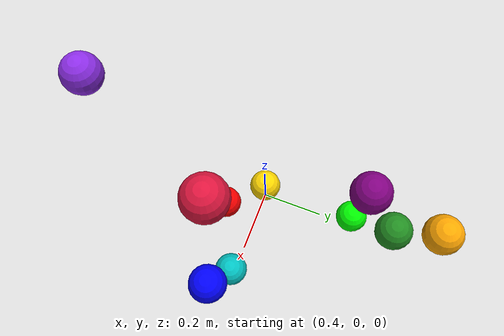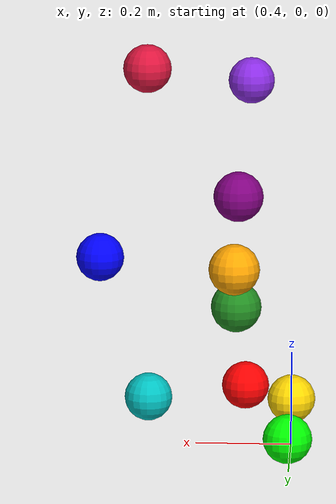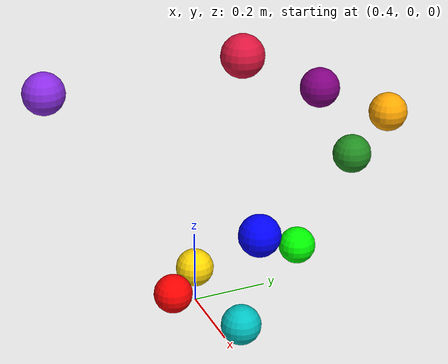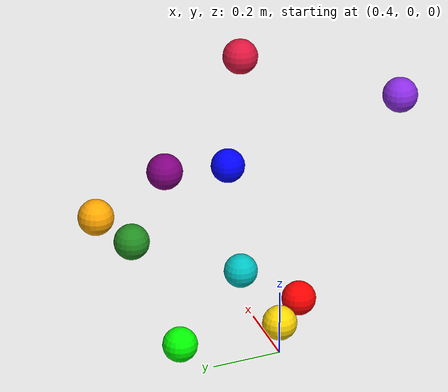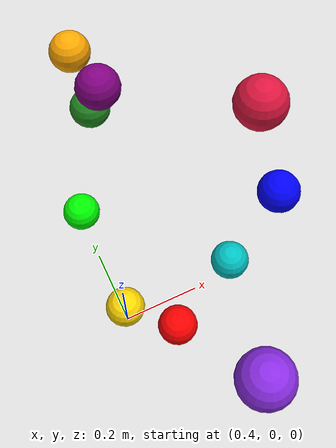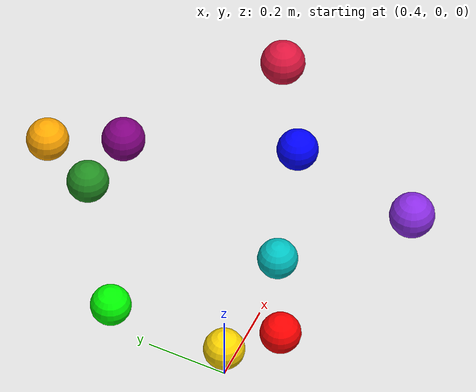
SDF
<sdf version="1.10">
 <world name="robot-arm">
  <physics name="default_physics" type="dart">
   <max_step_size>0.001</max_step_size>
   <real_time_factor>1</real_time_factor>
   <real_time_update_rate>1000</real_time_update_rate>
  </physics>
  <plugin filename="gz-sim-physics-system" name="gz::sim::systems::Physics"/>
  <plugin filename="gz-sim-sensors-system" name="gz::sim::systems::Sensors"/>
  <plugin filename="gz-sim-scene-broadcaster-system" name="gz::sim::systems::SceneBroadcaster"/>
  <plugin filename="gz-sim-user-commands-system" name="gz::sim::systems::UserCommands"/>
  <light type="directional" name="sun">
   <pose>0 0 10 0 0 0</pose>
   <diffuse>0.8 0.8 0.8 1</diffuse>
   <specular>0.2 0.2 0.2 1</specular>
   <attenuation>
    <range>1000</range>
    <constant>0.9</constant>
    <linear>0.01</linear>
    <quadratic>0.001</quadratic>
   </attenuation>
   <direction>-0.5 0.3 -0.9</direction>
  </light>
  <model name="hammer">
   <static>true</static>
   <pose>0.5 -0.1 0.1 0 0 0</pose>
   <link name="link">
    <inertial><mass>1.0</mass></inertial>
    <visual name="visual">
     <geometry><sphere><radius>0.05</radius></sphere></geometry>
     <material><ambient>1.0 0.0 0.0 1.0</ambient></material>
    </visual>
   </link>
  </model>
  <model name="push wall">
   <static>true</static>
   <pose>0.4 0.3 0.1 0 0 0</pose>
   <link name="link">
    <inertial><mass>1.0</mass></inertial>
    <visual name="visual">
     <geometry><sphere><radius>0.05</radius></sphere></geometry>
     <material><ambient>0.0 1.0 0.0 1.0</ambient></material>
    </visual>
   </link>
  </model>
  <model name="faucet close">
   <static>true</static>
   <pose>0.8 0.0 0.4 0 0 0</pose>
   <link name="link">
    <inertial><mass>1.0</mass></inertial>
    <visual name="visual">
     <geometry><sphere><radius>0.05</radius></sphere></geometry>
     <material><ambient>0.0 0.0 1.0 1.0</ambient></material>
    </visual>
   </link>
  </model>
  <model name="push back">
   <static>true</static>
   <pose>0.4 0.0 0.1 0 0 0</pose>
   <link name="link">
    <inertial><mass>1.0</mass></inertial>
    <visual name="visual">
     <geometry><sphere><radius>0.05</radius></sphere></geometry>
     <material><ambient>1.0 0.84 0.0 1.0</ambient></material>
    </visual>
   </link>
  </model>
  <model name="stick pull">
   <static>true</static>
   <pose>0.5 0.3 0.6 0 0 0</pose>
   <link name="link">
    <inertial><mass>1.0</mass></inertial>
    <visual name="visual">
     <geometry><sphere><radius>0.05</radius></sphere></geometry>
     <material><ambient>0.5 0.0 0.5 1.0</ambient></material>
    </visual>
   </link>
  </model>
  <model name="handle press side">
   <static>true</static>
   <pose>0.5 0.5 0.5 0 0 0</pose>
   <link name="link">
    <inertial><mass>1.0</mass></inertial>
    <visual name="visual">
     <geometry><sphere><radius>0.05</radius></sphere></geometry>
     <material><ambient>1.0 0.65 0.0 1.0</ambient></material>
    </visual>
   </link>
  </model>
  <model name="push">
   <static>true</static>
   <pose>0.7 0.0 0.1 0 0 0</pose>
   <link name="link">
    <inertial><mass>1.0</mass></inertial>
    <visual name="visual">
     <geometry><sphere><radius>0.05</radius></sphere></geometry>
     <material><ambient>0.0 0.75 0.75 1.0</ambient></material>
    </visual>
   </link>
  </model>
  <model name="shelf place">
   <static>true</static>
   <pose>0.7 0.0 0.8 0 0 0</pose>
   <link name="link">
    <inertial><mass>1.0</mass></inertial>
    <visual name="visual">
     <geometry><sphere><radius>0.05</radius></sphere></geometry>
     <material><ambient>0.86 0.08 0.24 1.0</ambient></material>
    </visual>
   </link>
  </model>
  <model name="window close">
   <static>true</static>
   <pose>0.5 -0.4 0.7 0 0 0</pose>
   <link name="link">
    <inertial><mass>1.0</mass></inertial>
    <visual name="visual">
     <geometry><sphere><radius>0.05</radius></sphere></geometry>
     <material><ambient>0.54 0.17 0.89 1.0</ambient></material>
    </visual>
   </link>
  </model>
  <model name="peg unplug side">
   <static>true</static>
   <pose>0.5 0.4 0.4 0 0 0</pose>
   <link name="link">
    <inertial><mass>1.0</mass></inertial>
    <visual name="visual">
     <geometry><sphere><radius>0.05</radius></sphere></geometry>
     <material><ambient>0.13 0.55 0.13 1.0</ambient></material>
    </visual>
   </link>
  </model>
 </world>
</sdf>
